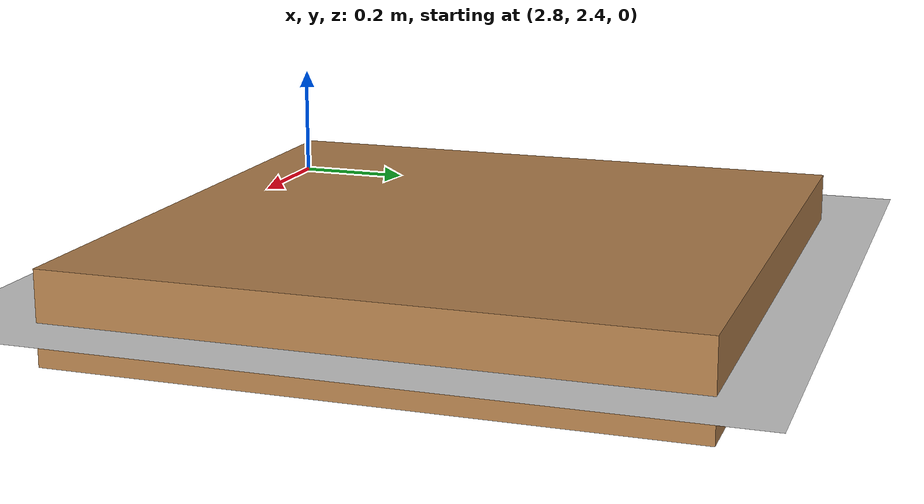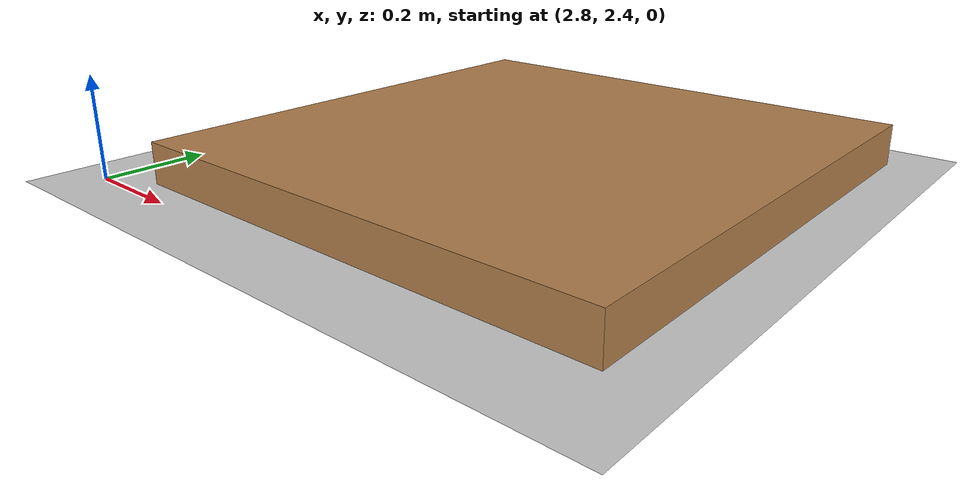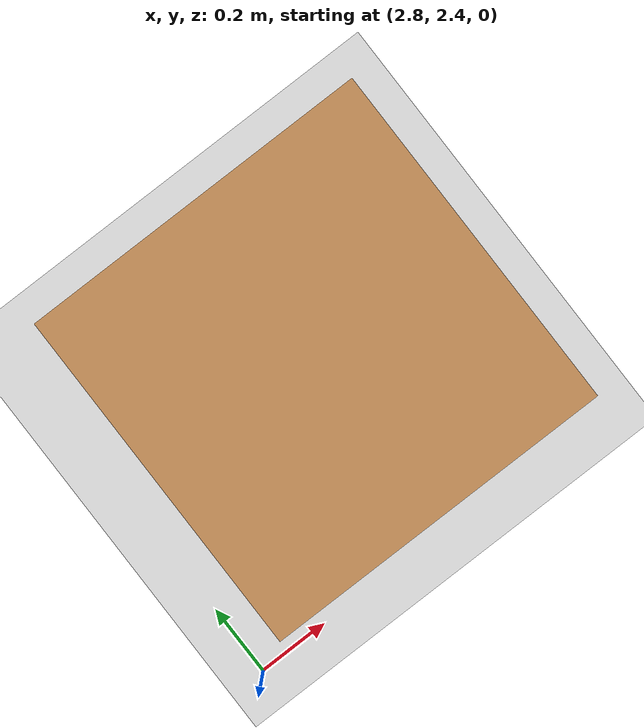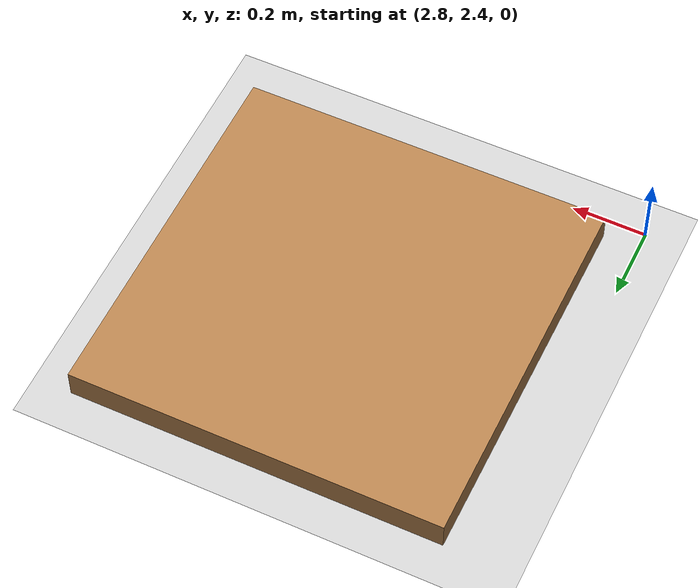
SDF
<sdf version="1.7">
 <world name="default">
  <light name="sun" type="directional">
   <pose>0 0 10 0 -0 0</pose>
   <diffuse>0.8 0.8 0.8 1</diffuse>
   <specular>0.2 0.2 0.2 1</specular>
   <attenuation>
    <range>1000</range>
    <constant>0.9</constant>
    <linear>0.01</linear>
    <quadratic>0.001</quadratic>
   </attenuation>
   <direction>-0.5 0.1 -0.9</direction>
   <spot><inner_angle>0</inner_angle><outer_angle>0</outer_angle><falloff>0</falloff></spot>
  </light>
  <model name="ground_plane">
   <static>1</static>
   <link name="link">
    <collision name="collision">
     <geometry><plane><normal>0 0 1</normal><size>100 100</size></plane></geometry>
     <surface><friction><ode><mu>100</mu><mu2>50</mu2></ode></friction></surface>
    </collision>
    <visual name="visual">
     <cast_shadows>0</cast_shadows>
     <geometry><plane><normal>0 0 1</normal><size>100 100</size></plane></geometry>
     <material>
      <script><uri>file://media/materials/scripts/gazebo.material</uri><name>Gazebo/Grey</name></script>
     </material>
    </visual>
   </link>
  </model>
  <gravity>0 0 -9.8</gravity>
  <magnetic_field>6e-06 2.3e-05 -4.2e-05</magnetic_field>
  <atmosphere type="adiabatic"/>
  <physics type="ode">
   <max_step_size>0.001</max_step_size>
   <real_time_factor>1</real_time_factor>
   <real_time_update_rate>1000</real_time_update_rate>
  </physics>
  <scene><ambient>0.4 0.4 0.4 1</ambient><background>0.7 0.7 0.7 1</background><shadows>1</shadows></scene>
  <spherical_coordinates>
   <surface_model>EARTH_WGS84</surface_model>
   <latitude_deg>0</latitude_deg>
   <longitude_deg>0</longitude_deg>
   <elevation>0</elevation>
   <heading_deg>0</heading_deg>
  </spherical_coordinates>
  <model name="wooden_board4">
   <link name="base">
    <pose>0 -1e-06 0.00523 0 -0 0</pose>
    <inertial>
     <mass>0.2765</mass>
     <inertia>
      <ixx>0.0025148</ixx>
      <ixy>0</ixy>
      <ixz>0</ixz>
      <iyy>0.00024037</iyy>
      <iyz>0</iyz>
      <izz>0.00275013</izz>
     </inertia>
     <pose>0 0 0.02 0 -0 0</pose>
    </inertial>
    <visual name="visual">
     <geometry><box><size>1 1 0.15</size></box></geometry>
     <material>
      <script><uri>file://media/materials/scripts/gazebo.material</uri><name>Gazebo/Wood</name></script>
      <shader type="pixel"><normal_map>__default__</normal_map></shader>
      <ambient>1 1 1 1</ambient>
      <diffuse>1 1 1 1</diffuse>
      <specular>0.2 0.2 0.2 1</specular>
      <emissive>0 0 0 1</emissive>
     </material>
    </visual>
    <collision name="collision">
     <geometry><box><size>1 1 0.15</size></box></geometry>
     <surface>
      <friction>
       <ode><mu>1</mu><mu2>1</mu2><fdir1>0 0 0</fdir1><slip1>0</slip1><slip2>0</slip2></ode>
       <torsional>
        <coefficient>1</coefficient>
        <patch_radius>0</patch_radius>
        <surface_radius>0.01</surface_radius>
        <use_patch_radius>0</use_patch_radius>
        <ode><slip>0</slip></ode>
       </torsional>
      </friction>
      <bounce><restitution_coefficient>0</restitution_coefficient><threshold>1e+06</threshold></bounce>
      <contact>
       <collide_without_contact>0</collide_without_contact>
       <collide_without_contact_bitmask>1</collide_without_contact_bitmask>
       <collide_bitmask>1</collide_bitmask>
       <ode>
        <soft_cfm>0</soft_cfm>
        <soft_erp>0.2</soft_erp>
        <kp>100000</kp>
        <kd>100</kd>
        <max_vel>100</max_vel>
        <min_depth>0.001</min_depth>
       </ode>
       <bullet>
        <split_impulse>1</split_impulse>
        <split_impulse_penetration_threshold>-0.01</split_impulse_penetration_threshold>
        <soft_cfm>0</soft_cfm>
        <soft_erp>0.2</soft_erp>
        <kp>100000</kp>
        <kd>100</kd>
       </bullet>
      </contact>
     </surface>
    </collision>
   </link>
   <static>0</static>
   <pose>3.39655 2.94851 0 0 -0 0</pose>
  </model>
 </world>
</sdf>
